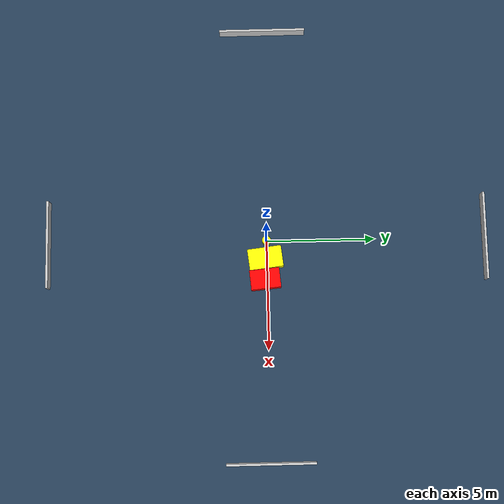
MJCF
<?xml version="1.0" ?>
<mujoco model="generated_environment">
  <option timestep="0.01" integrator="RK4" cone="elliptic"/>
  <default>
    <geom density="1"/>
  </default>
  <asset>
    <texture builtin="gradient" height="3072" name="skybox" rgb1="0.3 0.5 0.7" rgb2="0 0 0" type="skybox" width="512"/>
    <texture builtin="checker" height="300" name="groundplane" rgb1="0.2 0.3 0.4" rgb2="0.1 0.2 0.3" type="2d" width="300"/>
    <material name="groundplane" reflectance="0.2" texrepeat="5 5" texture="groundplane"/>
  </asset>
  <worldbody>
    <light dir="0 0 -1" directional="true" pos="0 0 1.5"/>
    <geom condim="3" friction="0.5 0.005 0.001" material="groundplane" name="floor" pos="0 0 0" size="0 0 0.05" type="plane"/>
    <body name="walls">
      <geom name="wall_1" condim="4" pos="-10.0 0.0 0.3" rgba="0.800000011920929 0.800000011920929 0.800000011920929 1.0" size="0.05 2.0 0.3" type="box"/>
      <geom name="wall_2" condim="4" pos="10.0 0.0 0.3" rgba="0.800000011920929 0.800000011920929 0.800000011920929 1.0" size="0.05 2.0 0.3" type="box"/>
      <geom name="wall_3" condim="4" pos="0.0 -10.0 0.3" rgba="0.800000011920929 0.800000011920929 0.800000011920929 1.0" size="2.0 0.05 0.3" type="box"/>
      <geom name="wall_4" condim="4" pos="0.0 10.0 0.3" rgba="0.800000011920929 0.800000011920929 0.800000011920929 1.0" size="2.0 0.05 0.3" type="box"/>
    </body>
    <body name="robot">
      <joint name="joint_x" type="slide" pos="0 0 0" axis="1 0 0"/>
      <joint name="joint_y" type="slide" pos="0 0 0" axis="0 1 0"/>
      <geom name="robot" type="cylinder" pos="0.0 0.0 0.2" size="0.2 0.2 0.0" mass="5.0" friction="1.0 0.005 0.0001" condim="4" rgba="1.0 1.0 0.0 1.0"/>
    </body>
    <body name="obstacle_1_movable">
      <geom name="obstacle_1_movable" condim="4" pos="0.8355628084283077 -0.06802495836058656 0.3" euler="0 0 6.811638025059841" friction="0.0 0.005 0.001" rgba="1.0 1.0 0.0 1.0" size="0.48099636426740994 0.7751805639422658 0.3" type="box" mass="0.1"/>
      <joint type="free"/>
    </body>
    <body name="obstacle_2_static">
      <geom name="obstacle_2_static" condim="4" pos="1.790373643058658 -0.09377386703314398 0.3" euler="0 0 95.43117256242668" friction="0.0 0.005 0.001" rgba="1.0 0.0 0.0 1.0" size="0.6831888323690802 0.44678733609236476 0.3" type="box"/>
    </body>
  </worldbody>
  <actuator>
    <motor name="actuator_x" joint="joint_x" gear="1" ctrlrange="-1 1"/>
    <motor name="actuator_y" joint="joint_y" gear="1" ctrlrange="-1 1"/>
  </actuator>
</mujoco>
